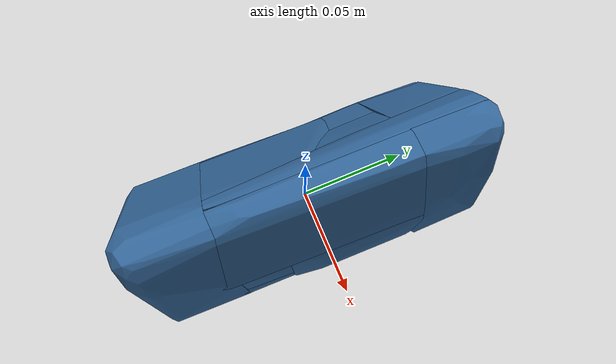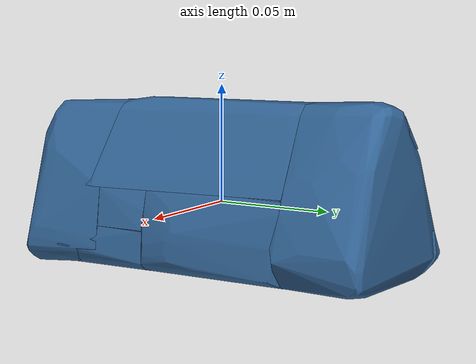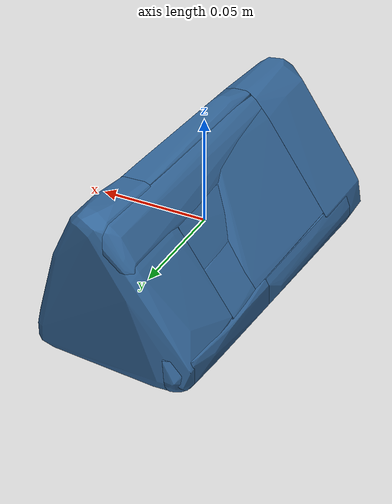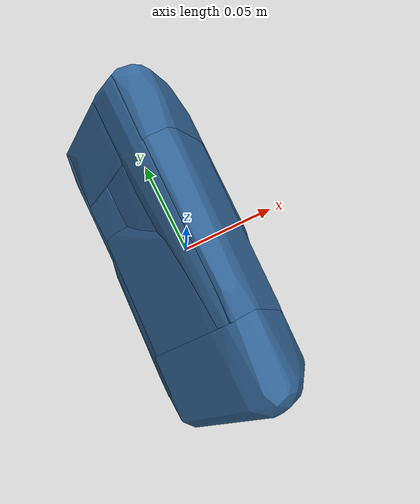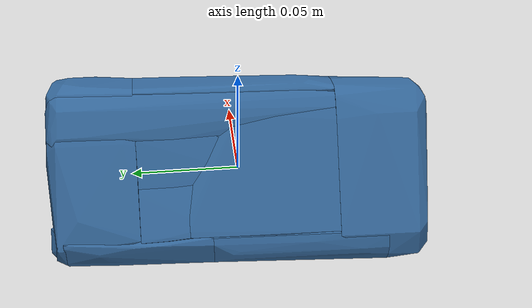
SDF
<?xml version='1.0' encoding='UTF-8'?>
<!-- This SDF was autogenerated by obj_to_drake_sdf.py -->
<sdf version="1.7">
  <model name="glasses_box">
    <link name="glasses_box">
      <inertial>
        <pose>0 0 0 0 0 0</pose>
        <mass>0.05</mass>
        <inertia>
          <ixx>0.00013715981</ixx>
          <iyy>3.2683469e-05</iyy>
          <izz>0.00013540654</izz>
          <ixy>-3.2375893e-06</ixy>
          <ixz>-2.8061546e-06</ixz>
          <iyz>-2.9609117e-06</iyz>
        </inertia>
      </inertial>
      <visual name="convex_0">
        <pose>0 0 0 0 0 0</pose>
        <geometry>
          <mesh>
            <uri>glasses_box_convex_0.obj</uri>
          </mesh>
        </geometry>
        <material>
          <diffuse>0.19607843137254902 0.39215686274509803 0.5882352941176471 1</diffuse>
        </material>
      </visual>
      <collision name="convex_0_volume">
        <pose>0 0 0 0 0 0</pose>
        <geometry>
          <mesh>
            <uri>glasses_box_convex_0.obj</uri>
          </mesh>
        </geometry>
        <drake:proximity_properties xmlns:drake="uri:drake">
          <drake:compliant_hydroelastic/>
          <drake:hydroelastic_modulus> 3.0e7 </drake:hydroelastic_modulus>
          <drake:mesh_resolution_hint> 0.02 </drake:mesh_resolution_hint>
          <drake:hunt_crossley_dissipation>10</drake:hunt_crossley_dissipation>
          <drake:mu_dynamic>0.3</drake:mu_dynamic>
        </drake:proximity_properties>
      </collision>
      <visual name="convex_1">
        <pose>0 0 0 0 0 0</pose>
        <geometry>
          <mesh>
            <uri>glasses_box_convex_1.obj</uri>
          </mesh>
        </geometry>
        <material>
          <diffuse>0.19607843137254902 0.39215686274509803 0.5882352941176471 1</diffuse>
        </material>
      </visual>
      <collision name="convex_1_volume">
        <pose>0 0 0 0 0 0</pose>
        <geometry>
          <mesh>
            <uri>glasses_box_convex_1.obj</uri>
          </mesh>
        </geometry>
        <drake:proximity_properties xmlns:drake="uri:drake">
          <drake:compliant_hydroelastic/>
          <drake:hydroelastic_modulus> 3.0e7 </drake:hydroelastic_modulus>
          <drake:mesh_resolution_hint> 0.02 </drake:mesh_resolution_hint>
          <drake:hunt_crossley_dissipation>10</drake:hunt_crossley_dissipation>
          <drake:mu_dynamic>0.3</drake:mu_dynamic>
        </drake:proximity_properties>
      </collision>
      <visual name="convex_2">
        <pose>0 0 0 0 0 0</pose>
        <geometry>
          <mesh>
            <uri>glasses_box_convex_2.obj</uri>
          </mesh>
        </geometry>
        <material>
          <diffuse>0.19607843137254902 0.39215686274509803 0.5882352941176471 1</diffuse>
        </material>
      </visual>
      <collision name="convex_2_volume">
        <pose>0 0 0 0 0 0</pose>
        <geometry>
          <mesh>
            <uri>glasses_box_convex_2.obj</uri>
          </mesh>
        </geometry>
        <drake:proximity_properties xmlns:drake="uri:drake">
          <drake:compliant_hydroelastic/>
          <drake:hydroelastic_modulus> 3.0e7 </drake:hydroelastic_modulus>
          <drake:mesh_resolution_hint> 0.02 </drake:mesh_resolution_hint>
          <drake:hunt_crossley_dissipation>10</drake:hunt_crossley_dissipation>
          <drake:mu_dynamic>0.3</drake:mu_dynamic>
        </drake:proximity_properties>
      </collision>
      <visual name="convex_3">
        <pose>0 0 0 0 0 0</pose>
        <geometry>
          <mesh>
            <uri>glasses_box_convex_3.obj</uri>
          </mesh>
        </geometry>
        <material>
          <diffuse>0.19607843137254902 0.39215686274509803 0.5882352941176471 1</diffuse>
        </material>
      </visual>
      <collision name="convex_3_volume">
        <pose>0 0 0 0 0 0</pose>
        <geometry>
          <mesh>
            <uri>glasses_box_convex_3.obj</uri>
          </mesh>
        </geometry>
        <drake:proximity_properties xmlns:drake="uri:drake">
          <drake:compliant_hydroelastic/>
          <drake:hydroelastic_modulus> 3.0e7 </drake:hydroelastic_modulus>
          <drake:mesh_resolution_hint> 0.02 </drake:mesh_resolution_hint>
          <drake:hunt_crossley_dissipation>10</drake:hunt_crossley_dissipation>
          <drake:mu_dynamic>0.3</drake:mu_dynamic>
        </drake:proximity_properties>
      </collision>
      <visual name="convex_4">
        <pose>0 0 0 0 0 0</pose>
        <geometry>
          <mesh>
            <uri>glasses_box_convex_4.obj</uri>
          </mesh>
        </geometry>
        <material>
          <diffuse>0.19607843137254902 0.39215686274509803 0.5882352941176471 1</diffuse>
        </material>
      </visual>
      <collision name="convex_4_volume">
        <pose>0 0 0 0 0 0</pose>
        <geometry>
          <mesh>
            <uri>glasses_box_convex_4.obj</uri>
          </mesh>
        </geometry>
        <drake:proximity_properties xmlns:drake="uri:drake">
          <drake:compliant_hydroelastic/>
          <drake:hydroelastic_modulus> 3.0e7 </drake:hydroelastic_modulus>
          <drake:mesh_resolution_hint> 0.02 </drake:mesh_resolution_hint>
          <drake:hunt_crossley_dissipation>10</drake:hunt_crossley_dissipation>
          <drake:mu_dynamic>0.3</drake:mu_dynamic>
        </drake:proximity_properties>
      </collision>
      <visual name="convex_5">
        <pose>0 0 0 0 0 0</pose>
        <geometry>
          <mesh>
            <uri>glasses_box_convex_5.obj</uri>
          </mesh>
        </geometry>
        <material>
          <diffuse>0.19607843137254902 0.39215686274509803 0.5882352941176471 1</diffuse>
        </material>
      </visual>
      <collision name="convex_5_volume">
        <pose>0 0 0 0 0 0</pose>
        <geometry>
          <mesh>
            <uri>glasses_box_convex_5.obj</uri>
          </mesh>
        </geometry>
        <drake:proximity_properties xmlns:drake="uri:drake">
          <drake:compliant_hydroelastic/>
          <drake:hydroelastic_modulus> 3.0e7 </drake:hydroelastic_modulus>
          <drake:mesh_resolution_hint> 0.02 </drake:mesh_resolution_hint>
          <drake:hunt_crossley_dissipation>10</drake:hunt_crossley_dissipation>
          <drake:mu_dynamic>0.3</drake:mu_dynamic>
        </drake:proximity_properties>
      </collision>
      <visual name="convex_6">
        <pose>0 0 0 0 0 0</pose>
        <geometry>
          <mesh>
            <uri>glasses_box_convex_6.obj</uri>
          </mesh>
        </geometry>
        <material>
          <diffuse>0.19607843137254902 0.39215686274509803 0.5882352941176471 1</diffuse>
        </material>
      </visual>
      <collision name="convex_6_volume">
        <pose>0 0 0 0 0 0</pose>
        <geometry>
          <mesh>
            <uri>glasses_box_convex_6.obj</uri>
          </mesh>
        </geometry>
        <drake:proximity_properties xmlns:drake="uri:drake">
          <drake:compliant_hydroelastic/>
          <drake:hydroelastic_modulus> 3.0e7 </drake:hydroelastic_modulus>
          <drake:mesh_resolution_hint> 0.02 </drake:mesh_resolution_hint>
          <drake:hunt_crossley_dissipation>10</drake:hunt_crossley_dissipation>
          <drake:mu_dynamic>0.3</drake:mu_dynamic>
        </drake:proximity_properties>
      </collision>
      <visual name="convex_7">
        <pose>0 0 0 0 0 0</pose>
        <geometry>
          <mesh>
            <uri>glasses_box_convex_7.obj</uri>
          </mesh>
        </geometry>
        <material>
          <diffuse>0.19607843137254902 0.39215686274509803 0.5882352941176471 1</diffuse>
        </material>
      </visual>
      <collision name="convex_7_volume">
        <pose>0 0 0 0 0 0</pose>
        <geometry>
          <mesh>
            <uri>glasses_box_convex_7.obj</uri>
          </mesh>
        </geometry>
        <drake:proximity_properties xmlns:drake="uri:drake">
          <drake:compliant_hydroelastic/>
          <drake:hydroelastic_modulus> 3.0e7 </drake:hydroelastic_modulus>
          <drake:mesh_resolution_hint> 0.02 </drake:mesh_resolution_hint>
          <drake:hunt_crossley_dissipation>10</drake:hunt_crossley_dissipation>
          <drake:mu_dynamic>0.3</drake:mu_dynamic>
        </drake:proximity_properties>
      </collision>
      <visual name="convex_8">
        <pose>0 0 0 0 0 0</pose>
        <geometry>
          <mesh>
            <uri>glasses_box_convex_8.obj</uri>
          </mesh>
        </geometry>
        <material>
          <diffuse>0.19607843137254902 0.39215686274509803 0.5882352941176471 1</diffuse>
        </material>
      </visual>
      <collision name="convex_8_volume">
        <pose>0 0 0 0 0 0</pose>
        <geometry>
          <mesh>
            <uri>glasses_box_convex_8.obj</uri>
          </mesh>
        </geometry>
        <drake:proximity_properties xmlns:drake="uri:drake">
          <drake:compliant_hydroelastic/>
          <drake:hydroelastic_modulus> 3.0e7 </drake:hydroelastic_modulus>
          <drake:mesh_resolution_hint> 0.02 </drake:mesh_resolution_hint>
          <drake:hunt_crossley_dissipation>10</drake:hunt_crossley_dissipation>
          <drake:mu_dynamic>0.3</drake:mu_dynamic>
        </drake:proximity_properties>
      </collision>
      <visual name="convex_9">
        <pose>0 0 0 0 0 0</pose>
        <geometry>
          <mesh>
            <uri>glasses_box_convex_9.obj</uri>
          </mesh>
        </geometry>
        <material>
          <diffuse>0.19607843137254902 0.39215686274509803 0.5882352941176471 1</diffuse>
        </material>
      </visual>
      <collision name="convex_9_volume">
        <pose>0 0 0 0 0 0</pose>
        <geometry>
          <mesh>
            <uri>glasses_box_convex_9.obj</uri>
          </mesh>
        </geometry>
        <drake:proximity_properties xmlns:drake="uri:drake">
          <drake:compliant_hydroelastic/>
          <drake:hydroelastic_modulus> 3.0e7 </drake:hydroelastic_modulus>
          <drake:mesh_resolution_hint> 0.02 </drake:mesh_resolution_hint>
          <drake:hunt_crossley_dissipation>10</drake:hunt_crossley_dissipation>
          <drake:mu_dynamic>0.3</drake:mu_dynamic>
        </drake:proximity_properties>
      </collision>
    </link>
  </model>
</sdf>
